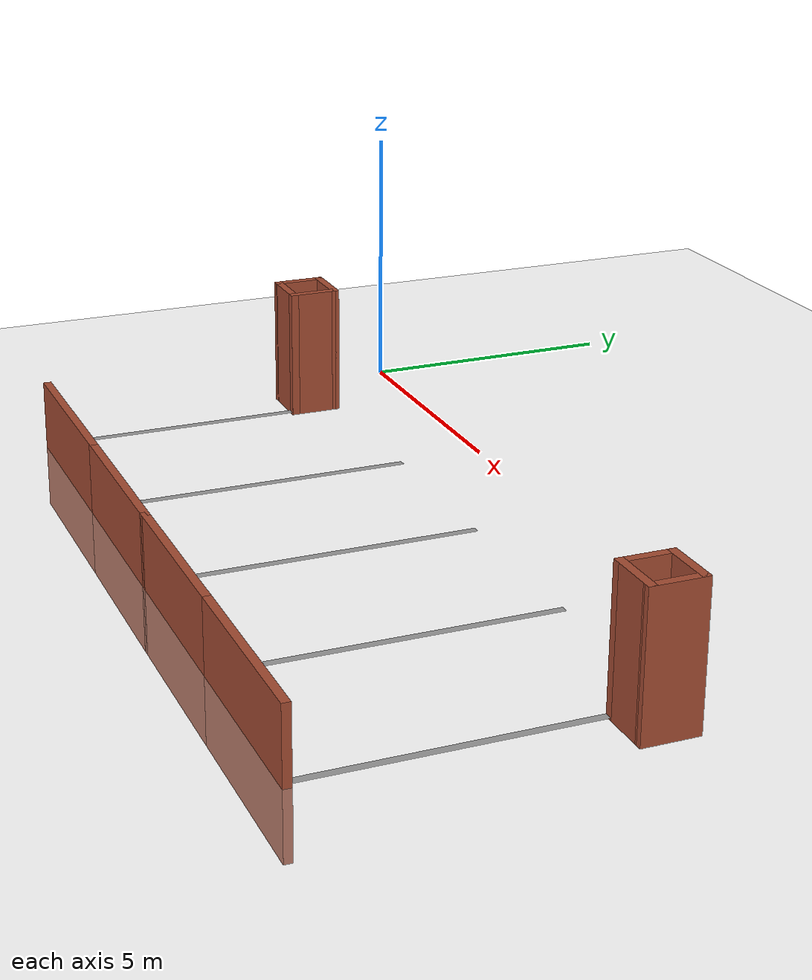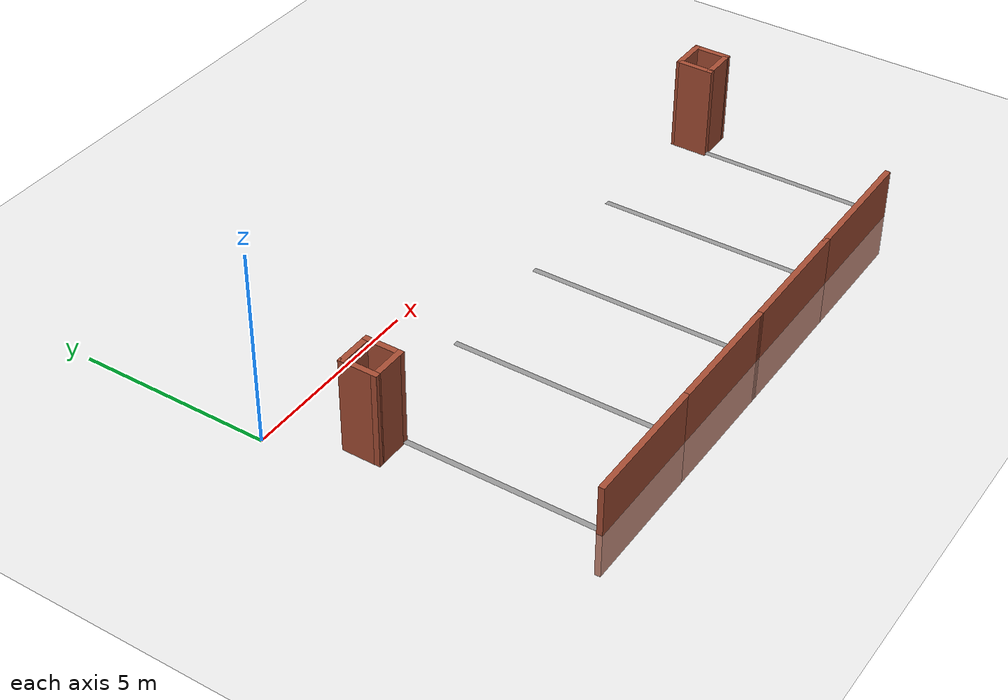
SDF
<?xml version="1.0" ?>
<sdf version="1.6">
  <world name="my_world">
    <!-- 环境光 -->
    <include>
      <uri>model://sun</uri>
    </include>

    <!-- 地面 -->
    <include>
      <uri>model://ground_plane</uri>
      <script>
        <uri>file://media/materials/scripts/gazebo.material</uri>
        <name>Gazebo/White</name>
      </script>
    </include>

    <!--模型 -->
    <model name='ParkingLot'>
      <include>
        <uri>model://ParkingLot</uri>
      </include>
    </model>

  </world>
</sdf>

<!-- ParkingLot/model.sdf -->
<sdf version='1.7'>
  <model name='ParkingLot'>
    <pose>7.99565 -3.80758 0 0 -0 0</pose>
    <link name='Wall_14'>
      <collision name='Wall_14_Collision'>
        <geometry>
          <box>
            <size>3.4997 0.15 0</size>
          </box>
        </geometry>
        <pose>0 0 0.05 0 -0 0</pose>
      </collision>
      <visual name='Wall_14_Visual'>
        <pose>0 0 0.05 0 -0 0</pose>
        <geometry>
          <box>
            <size>3.4997 0.15 2.5</size>
          </box>
        </geometry>
        <material>
          <script>
            <uri>file://media/materials/scripts/gazebo.material</uri>
            <name>Gazebo/Bricks</name>
          </script>
          <ambient>1 1 1 1</ambient>
        </material>
        <meta>
          <layer>0</layer>
        </meta>
      </visual>
      <pose>-4.64165 -3.72592 0 0 -0 0.000299</pose>
    </link>
    <link name='Wall_17'>
      <collision name='Wall_17_Collision'>
        <geometry>
          <box>
            <size>3.50001 0.15 0</size>
          </box>
        </geometry>
        <pose>0 0 0.05 0 -0 0</pose>
      </collision>
      <visual name='Wall_17_Visual'>
        <pose>0 0 0.05 0 -0 0</pose>
        <geometry>
          <box>
            <size>3.50001 0.15 2.5</size>
          </box>
        </geometry>
        <material>
          <script>
            <uri>file://media/materials/scripts/gazebo.material</uri>
            <name>Gazebo/Bricks</name>
          </script>
          <ambient>1 1 1 1</ambient>
        </material>
        <meta>
          <layer>0</layer>
        </meta>
      </visual>
      <pose>-1.29165 -3.72892 0 0 -0 -0.00209</pose>
    </link>
    <link name='Wall_18'>
      <collision name='Wall_18_Collision'>
        <geometry>
          <box>
            <size>6 0.15 0.0</size>
          </box>
        </geometry>
        <pose>0 0 0.05 0 -0 0</pose>
      </collision>
      <visual name='Wall_18_Visual'>
        <pose>0 0 0.05 0 -0 0</pose>
        <geometry>
          <box>
            <size>6 0.15 0.0</size>
          </box>
        </geometry>
        <material>
          <script>
            <uri>file://media/materials/scripts/gazebo.material</uri>
            <name>Gazebo/Grey</name>
          </script>
          <ambient>1 1 1 1</ambient>
        </material>
        <meta>
          <layer>0</layer>
        </meta>
      </visual>
      <pose>0.37685 -0.80742 0 0 -0 1.57302</pose>
    </link>
    <link name='Wall_23'>
      <collision name='Wall_23_Collision'>
        <geometry>
          <box>
            <size>3.48685 0.15 0</size>
          </box>
        </geometry>
        <pose>0 0 0.05 0 -0 0</pose>
      </collision>
      <visual name='Wall_23_Visual'>
        <pose>0 0 0.05 0 -0 0</pose>
        <geometry>
          <box>
            <size>3.48685 0.15 2.5</size>
          </box>
        </geometry>
        <material>
          <script>
            <uri>file://media/materials/scripts/gazebo.material</uri>
            <name>Gazebo/Bricks</name>
          </script>
          <ambient>1 1 1 1</ambient>
        </material>
        <meta>
          <layer>0</layer>
        </meta>
      </visual>
      <pose>5.40185 -3.73242 0 0 -0 0</pose>
    </link>
    <link name='Wall_25'>
      <collision name='Wall_25_Collision'>
        <geometry>
          <box>
            <size>1 0.15 2.5</size>
          </box>
        </geometry>
        <pose>0 0 1.25 0 -0 0</pose>
      </collision>
      <visual name='Wall_25_Visual'>
        <pose>0 0 1.25 0 -0 0</pose>
        <geometry>
          <box>
            <size>1 0.15 2.5</size>
          </box>
        </geometry>
        <material>
          <script>
            <uri>file://media/materials/scripts/gazebo.material</uri>
            <name>Gazebo/Bricks</name>
          </script>
          <ambient>1 1 1 1</ambient>
        </material>
        <meta>
          <layer>0</layer>
        </meta>
      </visual>
      <pose>7.49565 2.11733 0 0 -0 0</pose>
    </link>
    <link name='Wall_26'>
      <collision name='Wall_26_Collision'>
        <geometry>
          <box>
            <size>1 0.15 2.5</size>
          </box>
        </geometry>
        <pose>0 0 1.25 0 -0 0</pose>
      </collision>
      <visual name='Wall_26_Visual'>
        <pose>0 0 1.25 0 -0 0</pose>
        <geometry>
          <box>
            <size>1 0.15 2.5</size>
          </box>
        </geometry>
        <material>
          <script>
            <uri>file://media/materials/scripts/gazebo.material</uri>
            <name>Gazebo/Bricks</name>
          </script>
          <ambient>1 1 1 1</ambient>
        </material>
        <meta>
          <layer>0</layer>
        </meta>
      </visual>
      <pose>7.92065 1.69233 0 0 -0 -1.5708</pose>
    </link>
    <link name='Wall_27'>
      <collision name='Wall_27_Collision'>
        <geometry>
          <box>
            <size>1 0.15 2.5</size>
          </box>
        </geometry>
        <pose>0 0 1.25 0 -0 0</pose>
      </collision>
      <visual name='Wall_27_Visual'>
        <pose>0 0 1.25 0 -0 0</pose>
        <geometry>
          <box>
            <size>1 0.15 2.5</size>
          </box>
        </geometry>
        <material>
          <script>
            <uri>file://media/materials/scripts/gazebo.material</uri>
            <name>Gazebo/Bricks</name>
          </script>
          <ambient>1 1 1 1</ambient>
        </material>
        <meta>
          <layer>0</layer>
        </meta>
      </visual>
      <pose>7.4955 1.26745 0 0 -0 3.14129</pose>
    </link>
    <link name='Wall_29'>
      <collision name='Wall_29_Collision'>
        <geometry>
          <box>
            <size>5.14346 0.15 0.0</size>
          </box>
        </geometry>
        <pose>0 0 0.05 0 -0 0</pose>
      </collision>
      <visual name='Wall_29_Visual'>
        <pose>0 0 0.05 0 -0 0</pose>
        <geometry>
          <box>
            <size>5.14346 0.15 0.0</size>
          </box>
        </geometry>
        <material>
          <script>
            <uri>file://media/materials/scripts/gazebo.material</uri>
            <name>Gazebo/Grey</name>
          </script>
          <ambient>1 1 1 1</ambient>
        </material>
        <meta>
          <layer>0</layer>
        </meta>
      </visual>
      <pose>-6.32315 -1.22942 0 0 -0 1.5734</pose>
    </link>
    <link name='Wall_32'>
      <collision name='Wall_32_Collision'>
        <geometry>
          <box>
            <size>1 0.15 2.5</size>
          </box>
        </geometry>
        <pose>0 0 1.25 0 -0 0</pose>
      </collision>
      <visual name='Wall_32_Visual'>
        <pose>0 0 1.25 0 -0 0</pose>
        <geometry>
          <box>
            <size>1 0.15 2.5</size>
          </box>
        </geometry>
        <material>
          <script>
            <uri>file://media/materials/scripts/gazebo.material</uri>
            <name>Gazebo/Bricks</name>
          </script>
          <ambient>1 1 1 1</ambient>
        </material>
        <meta>
          <layer>0</layer>
        </meta>
      </visual>
      <pose>7.0705 1.69245 0 0 -0 1.57044</pose>
    </link>
    <link name='Wall_34'>
      <collision name='Wall_34_Collision'>
        <geometry>
          <box>
            <size>5.15 0.15 0.0</size>
          </box>
        </geometry>
        <pose>0 0 0.05 0 -0 0</pose>
      </collision>
      <visual name='Wall_34_Visual'>
        <pose>0 0 0.05 0 -0 0</pose>
        <geometry>
          <box>
            <size>5.15 0.15 0.0</size>
          </box>
        </geometry>
        <material>
          <script>
            <uri>file://media/materials/scripts/gazebo.material</uri>
            <name>Gazebo/Grey</name>
          </script>
          <ambient>1 1 1 1</ambient>
        </material>
        <meta>
          <layer>0</layer>
        </meta>
      </visual>
      <pose>7.07035 -1.23242 0 0 -0 -1.5708</pose>
    </link>
    <link name='Wall_36'>
      <collision name='Wall_36_Collision'>
        <geometry>
          <box>
            <size>3.4997 0.15 0</size>
          </box>
        </geometry>
        <pose>0 0 0.05 0 -0 0</pose>
      </collision>
      <visual name='Wall_36_Visual'>
        <pose>0 0 0.05 0 -0 0</pose>
        <geometry>
          <box>
            <size>3.4997 0.15 2.5</size>
          </box>
        </geometry>
        <material>
          <script>
            <uri>file://media/materials/scripts/gazebo.material</uri>
            <name>Gazebo/Bricks</name>
          </script>
          <ambient>1 1 1 1</ambient>
        </material>
        <meta>
          <layer>0</layer>
        </meta>
      </visual>
      <pose>2.05835 -3.73242 0 0 -0 0</pose>
    </link>
    <link name='Wall_40'>
      <collision name='Wall_40_Collision'>
        <geometry>
          <box>
            <size>6 0.15 0.0</size>
          </box>
        </geometry>
        <pose>0 0 0.05 0 -0 0</pose>
      </collision>
      <visual name='Wall_40_Visual'>
        <pose>0 0 0.05 0 -0 0</pose>
        <geometry>
          <box>
            <size>6 0.15 0.0</size>
          </box>
        </geometry>
        <material>
          <script>
            <uri>file://media/materials/scripts/gazebo.material</uri>
            <name>Gazebo/Grey</name>
          </script>
          <ambient>1 1 1 1</ambient>
        </material>
        <meta>
          <layer>0</layer>
        </meta>
      </visual>
      <pose>-2.96665 -0.80042 0 0 -0 1.5708</pose>
    </link>
    <link name='Wall_44'>
      <collision name='Wall_44_Collision'>
        <geometry>
          <box>
            <size>6 0.15 0.0</size>
          </box>
        </geometry>
        <pose>0 0 0.05 0 -0 0</pose>
      </collision>
      <visual name='Wall_44_Visual'>
        <pose>0 0 0.05 0 -0 0</pose>
        <geometry>
          <box>
            <size>6 0.15 0.0</size>
          </box>
        </geometry>
        <material>
          <script>
            <uri>file://media/materials/scripts/gazebo.material</uri>
            <name>Gazebo/Grey</name>
          </script>
          <ambient>1 1 1 1</ambient>
        </material>
        <meta>
          <layer>0</layer>
        </meta>
      </visual>
      <pose>3.73335 -0.80742 0 0 -0 1.5708</pose>
    </link>
    <link name='Wall_6'>
      <collision name='Wall_6_Collision'>
        <geometry>
          <box>
            <size>1 0.15 2.5</size>
          </box>
        </geometry>
        <pose>0 0 1.25 0 -0 0</pose>
      </collision>
      <visual name='Wall_6_Visual'>
        <pose>0 0 1.25 0 -0 0</pose>
        <geometry>
          <box>
            <size>1 0.15 2.5</size>
          </box>
        </geometry>
        <material>
          <script>
            <uri>file://media/materials/scripts/gazebo.material</uri>
            <name>Gazebo/Bricks</name>
          </script>
          <ambient>1 1 1 1</ambient>
        </material>
        <meta>
          <layer>0</layer>
        </meta>
      </visual>
      <pose>-6.75435 2.11733 0 0 -0 0</pose>
    </link>
    <link name='Wall_7'>
      <collision name='Wall_7_Collision'>
        <geometry>
          <box>
            <size>1 0.15 2.5</size>
          </box>
        </geometry>
        <pose>0 0 1.25 0 -0 0</pose>
      </collision>
      <visual name='Wall_7_Visual'>
        <pose>0 0 1.25 0 -0 0</pose>
        <geometry>
          <box>
            <size>1 0.15 2.5</size>
          </box>
        </geometry>
        <material>
          <script>
            <uri>file://media/materials/scripts/gazebo.material</uri>
            <name>Gazebo/Bricks</name>
          </script>
          <ambient>1 1 1 1</ambient>
        </material>
        <meta>
          <layer>0</layer>
        </meta>
      </visual>
      <pose>-6.3295 1.69245 0 0 -0 -1.57115</pose>
    </link>
    <link name='Wall_8'>
      <collision name='Wall_8_Collision'>
        <geometry>
          <box>
            <size>1 0.15 2.5</size>
          </box>
        </geometry>
        <pose>0 0 1.25 0 -0 0</pose>
      </collision>
      <visual name='Wall_8_Visual'>
        <pose>0 0 1.25 0 -0 0</pose>
        <geometry>
          <box>
            <size>1 0.15 2.5</size>
          </box>
        </geometry>
        <material>
          <script>
            <uri>file://media/materials/scripts/gazebo.material</uri>
            <name>Gazebo/Bricks</name>
          </script>
          <ambient>1 1 1 1</ambient>
        </material>
        <meta>
          <layer>0</layer>
        </meta>
      </visual>
      <pose>-6.7545 1.26745 0 0 -0 -3.14129</pose>
    </link>
    <link name='Wall_9'>
      <collision name='Wall_9_Collision'>
        <geometry>
          <box>
            <size>1 0.15 2.5</size>
          </box>
        </geometry>
        <pose>0 0 1.25 0 -0 0</pose>
      </collision>
      <visual name='Wall_9_Visual'>
        <pose>0 0 1.25 0 -0 0</pose>
        <geometry>
          <box>
            <size>1 0.15 2.5</size>
          </box>
        </geometry>
        <material>
          <script>
            <uri>file://media/materials/scripts/gazebo.material</uri>
            <name>Gazebo/Bricks</name>
          </script>
          <ambient>1 1 1 1</ambient>
        </material>
        <meta>
          <layer>0</layer>
        </meta>
      </visual>
      <pose>-7.17935 1.69233 0 0 -0 1.5708</pose>
    </link>
    <static>1</static>
  </model>
</sdf>
